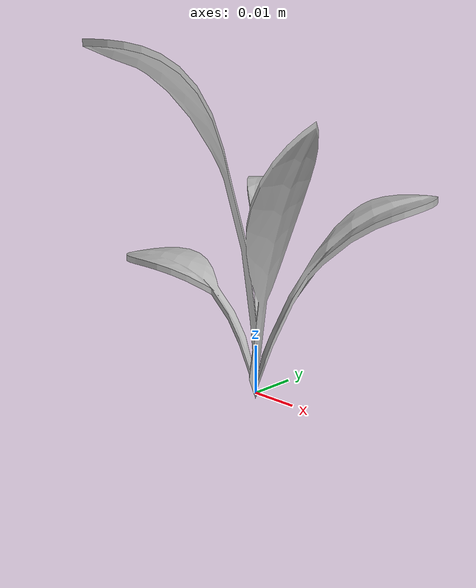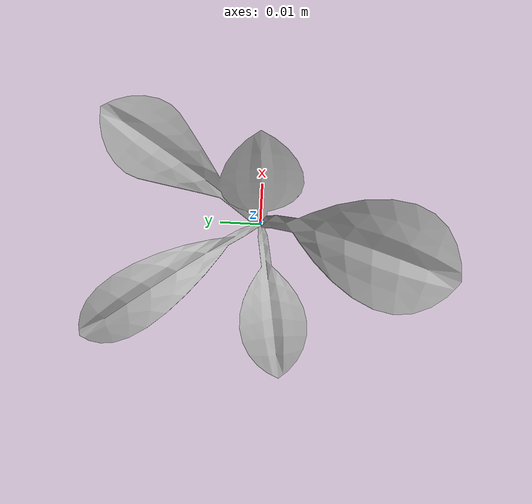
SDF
<sdf version="1.6">
  <model name="sugar_beet_19">
    <static>true</static>
    <link name="body">
      <visual name="visual">
        <geometry>
          <mesh>
            <uri>file:///sugar_beet_19/media/sugar_beet.dae</uri>
          </mesh>
        </geometry>
      </visual>
    </link>
  </model>
</sdf>
